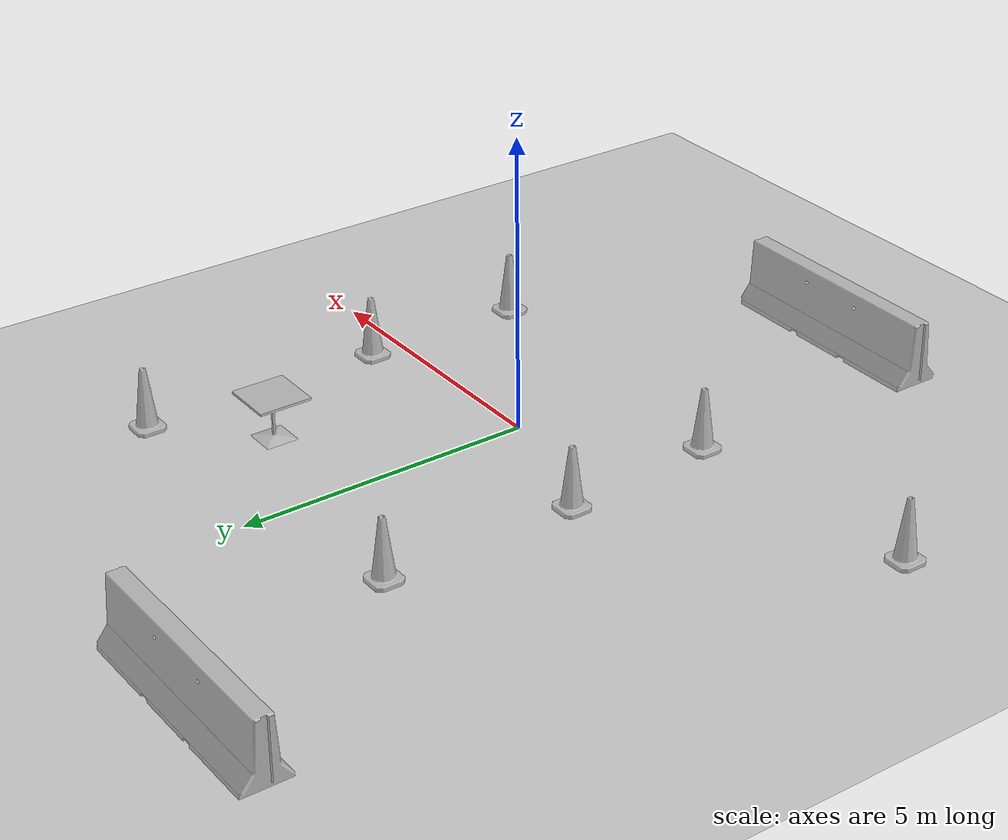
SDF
<sdf version="1.7">
 <world name="default">
  <light name="sun" type="directional">
   <pose>0 0 10 0 -0 0</pose>
   <diffuse>0.8 0.8 0.8 1</diffuse>
   <specular>0.2 0.2 0.2 1</specular>
   <attenuation>
    <range>1000</range>
    <constant>0.9</constant>
    <linear>0.01</linear>
    <quadratic>0.001</quadratic>
   </attenuation>
   <direction>-0.5 0.1 -0.9</direction>
   <spot><inner_angle>0</inner_angle><outer_angle>0</outer_angle><falloff>0</falloff></spot>
  </light>
  <model name="ground_plane">
   <static>1</static>
   <link name="link">
    <collision name="collision">
     <geometry><plane><normal>0 0 1</normal><size>100 100</size></plane></geometry>
     <surface>
      <contact><collide_bitmask>65535</collide_bitmask></contact>
      <friction><ode><mu>100</mu><mu2>50</mu2></ode></friction>
     </surface>
    </collision>
    <visual name="visual">
     <cast_shadows>0</cast_shadows>
     <geometry><plane><normal>0 0 1</normal><size>100 100</size></plane></geometry>
     <material>
      <script><uri>file://media/materials/scripts/gazebo.material</uri><name>Gazebo/Grey</name></script>
     </material>
    </visual>
   </link>
  </model>
  <gravity>0 0 -9.8</gravity>
  <magnetic_field>6e-06 2.3e-05 -4.2e-05</magnetic_field>
  <atmosphere type="adiabatic"/>
  <physics type="ode">
   <max_step_size>0.001</max_step_size>
   <real_time_factor>1</real_time_factor>
   <real_time_update_rate>1000</real_time_update_rate>
  </physics>
  <scene><ambient>0.4 0.4 0.4 1</ambient><background>0.7 0.7 0.7 1</background><shadows>1</shadows></scene>
  <audio><device>default</device></audio>
  <spherical_coordinates>
   <surface_model>EARTH_WGS84</surface_model>
   <latitude_deg>0</latitude_deg>
   <longitude_deg>0</longitude_deg>
   <elevation>0</elevation>
   <heading_deg>0</heading_deg>
  </spherical_coordinates>
  <model name="jersey_barrier">
   <static>1</static>
   <link name="link">
    <visual name="visual">
     <geometry><mesh><uri>model://jersey_barrier/meshes/jersey_barrier.dae</uri></mesh></geometry>
    </visual>
    <collision name="upright">
     <pose>0 0 0.5715 0 -0 0</pose>
     <geometry><box><size>4.06542 0.3063 1.143</size></box></geometry>
    </collision>
    <collision name="base">
     <pose>0 0 0.032258 0 -0 0</pose>
     <geometry><box><size>4.06542 0.8107 0.064516</size></box></geometry>
    </collision>
    <collision name="base2">
     <pose>0 0 0.1 0 -0 0</pose>
     <geometry><box><size>4.06542 0.65 0.1</size></box></geometry>
    </collision>
    <collision name="base3">
     <pose>0 0 0.2 0 -0 0</pose>
     <geometry><box><size>4.06542 0.5 0.1</size></box></geometry>
    </collision>
    <collision name="left-angle">
     <pose>0 -0.224 0.2401 0.9 -0 0</pose>
     <geometry><box><size>4.06542 0.5 0.064516</size></box></geometry>
    </collision>
    <collision name="right-angle">
     <pose>0 0.224 0.2401 -0.9 0 0</pose>
     <geometry><box><size>4.06542 0.5 0.064516</size></box></geometry>
    </collision>
   </link>
   <pose>-3.52421 7.7597 0 0 -0 0</pose>
  </model>
  <model name="cafe_table">
   <static>1</static>
   <link name="link">
    <collision name="surface">
     <pose>0 0 0.755 0 -0 0</pose>
     <geometry><box><size>0.913 0.913 0.04</size></box></geometry>
    </collision>
    <collision name="column">
     <pose>0 0 0.37 0 -0 0</pose>
     <geometry><box><size>0.042 0.042 0.74</size></box></geometry>
    </collision>
    <collision name="base">
     <pose>0 0 0.02 0 -0 0</pose>
     <geometry><box><size>0.56 0.56 0.04</size></box></geometry>
    </collision>
    <visual name="visual">
     <geometry><mesh><uri>model://cafe_table/meshes/cafe_table.dae</uri></mesh></geometry>
    </visual>
   </link>
   <pose>2.03404 3.30542 0 0 -0 0</pose>
  </model>
  <model name="Construction Cone">
   <link name="link">
    <collision name="collision">
     <geometry>
      <mesh><scale>10 10 10</scale><uri>model://construction_cone/meshes/construction_cone.dae</uri></mesh>
     </geometry>
    </collision>
    <visual name="visual">
     <geometry>
      <mesh><scale>10 10 10</scale><uri>model://construction_cone/meshes/construction_cone.dae</uri></mesh>
     </geometry>
    </visual>
    <inertial>
     <inertia><ixx>1</ixx><ixy>0</ixy><ixz>0</ixz><iyy>1</iyy><iyz>0</iyz><izz>1</izz></inertia>
     <mass>1</mass>
    </inertial>
   </link>
   <pose>-2.22925 -1.95568 -0 0 -1e-06 0</pose>
  </model>
  <model name="Construction Cone_clone">
   <link name="link">
    <collision name="collision">
     <geometry>
      <mesh><scale>10 10 10</scale><uri>model://construction_cone/meshes/construction_cone.dae</uri></mesh>
     </geometry>
    </collision>
    <visual name="visual">
     <geometry>
      <mesh><scale>10 10 10</scale><uri>model://construction_cone/meshes/construction_cone.dae</uri></mesh>
     </geometry>
    </visual>
    <inertial>
     <inertia><ixx>1</ixx><ixy>0</ixy><ixz>0</ixz><iyy>1</iyy><iyz>0</iyz><izz>1</izz></inertia>
     <mass>1</mass>
    </inertial>
   </link>
   <pose>-2.43646 0.744574 -4e-06 -3e-06 1e-06 0</pose>
  </model>
  <model name="Construction Cone_clone_0">
   <link name="link">
    <collision name="collision">
     <geometry>
      <mesh><scale>10 10 10</scale><uri>model://construction_cone/meshes/construction_cone.dae</uri></mesh>
     </geometry>
    </collision>
    <visual name="visual">
     <geometry>
      <mesh><scale>10 10 10</scale><uri>model://construction_cone/meshes/construction_cone.dae</uri></mesh>
     </geometry>
    </visual>
    <inertial>
     <inertia><ixx>1</ixx><ixy>0</ixy><ixz>0</ixz><iyy>1</iyy><iyz>0</iyz><izz>1</izz></inertia>
     <mass>1</mass>
    </inertial>
   </link>
   <pose>-2.42385 4.07675 -0 0 -1e-06 0</pose>
  </model>
  <model name="Construction Cone_clone_1">
   <link name="link">
    <collision name="collision">
     <geometry>
      <mesh><scale>10 10 10</scale><uri>model://construction_cone/meshes/construction_cone.dae</uri></mesh>
     </geometry>
    </collision>
    <visual name="visual">
     <geometry>
      <mesh><scale>10 10 10</scale><uri>model://construction_cone/meshes/construction_cone.dae</uri></mesh>
     </geometry>
    </visual>
    <inertial>
     <inertia><ixx>1</ixx><ixy>0</ixy><ixz>0</ixz><iyy>1</iyy><iyz>0</iyz><izz>1</izz></inertia>
     <mass>1</mass>
    </inertial>
   </link>
   <pose>3.42055 -2.23322 -0 0 -0 0</pose>
  </model>
  <model name="Construction Cone_clone_2">
   <link name="link">
    <collision name="collision">
     <geometry>
      <mesh><scale>10 10 10</scale><uri>model://construction_cone/meshes/construction_cone.dae</uri></mesh>
     </geometry>
    </collision>
    <visual name="visual">
     <geometry>
      <mesh><scale>10 10 10</scale><uri>model://construction_cone/meshes/construction_cone.dae</uri></mesh>
     </geometry>
    </visual>
    <inertial>
     <inertia><ixx>1</ixx><ixy>0</ixy><ixz>0</ixz><iyy>1</iyy><iyz>0</iyz><izz>1</izz></inertia>
     <mass>1</mass>
    </inertial>
   </link>
   <pose>3.42658 0.586041 -1e-06 1e-06 -2e-06 0.000129</pose>
  </model>
  <model name="Construction Cone_clone_3">
   <link name="link">
    <collision name="collision">
     <geometry>
      <mesh><scale>10 10 10</scale><uri>model://construction_cone/meshes/construction_cone.dae</uri></mesh>
     </geometry>
    </collision>
    <visual name="visual">
     <geometry>
      <mesh><scale>10 10 10</scale><uri>model://construction_cone/meshes/construction_cone.dae</uri></mesh>
     </geometry>
    </visual>
    <inertial>
     <inertia><ixx>1</ixx><ixy>0</ixy><ixz>0</ixz><iyy>1</iyy><iyz>0</iyz><izz>1</izz></inertia>
     <mass>1</mass>
    </inertial>
   </link>
   <pose>3.45077 4.80478 -1e-05 0 -0 0</pose>
  </model>
  <model name="jersey_barrier_0">
   <static>1</static>
   <link name="link">
    <visual name="visual">
     <geometry><mesh><uri>model://jersey_barrier/meshes/jersey_barrier.dae</uri></mesh></geometry>
    </visual>
    <collision name="upright">
     <pose>0 0 0.5715 0 -0 0</pose>
     <geometry><box><size>4.06542 0.3063 1.143</size></box></geometry>
    </collision>
    <collision name="base">
     <pose>0 0 0.032258 0 -0 0</pose>
     <geometry><box><size>4.06542 0.8107 0.064516</size></box></geometry>
    </collision>
    <collision name="base2">
     <pose>0 0 0.1 0 -0 0</pose>
     <geometry><box><size>4.06542 0.65 0.1</size></box></geometry>
    </collision>
    <collision name="base3">
     <pose>0 0 0.2 0 -0 0</pose>
     <geometry><box><size>4.06542 0.5 0.1</size></box></geometry>
    </collision>
    <collision name="left-angle">
     <pose>0 -0.224 0.2401 0.9 -0 0</pose>
     <geometry><box><size>4.06542 0.5 0.064516</size></box></geometry>
    </collision>
    <collision name="right-angle">
     <pose>0 0.224 0.2401 -0.9 0 0</pose>
     <geometry><box><size>4.06542 0.5 0.064516</size></box></geometry>
    </collision>
   </link>
   <pose>-0.69695 -6.12401 0 0 -0 0</pose>
  </model>
  <model name="Construction Cone_clone_4">
   <link name="link">
    <collision name="collision">
     <geometry>
      <mesh><scale>10 10 10</scale><uri>model://construction_cone/meshes/construction_cone.dae</uri></mesh>
     </geometry>
    </collision>
    <visual name="visual">
     <geometry>
      <mesh><scale>10 10 10</scale><uri>model://construction_cone/meshes/construction_cone.dae</uri></mesh>
     </geometry>
    </visual>
    <inertial>
     <inertia><ixx>1</ixx><ixy>0</ixy><ixz>0</ixz><iyy>1</iyy><iyz>0</iyz><izz>1</izz></inertia>
     <mass>1</mass>
    </inertial>
   </link>
   <pose>-6.42035 -2.314 -1e-05 0 -0 0</pose>
  </model>
 </world>
</sdf>
